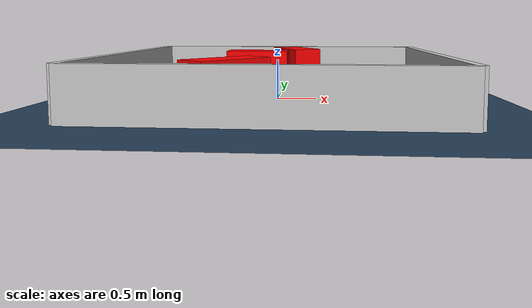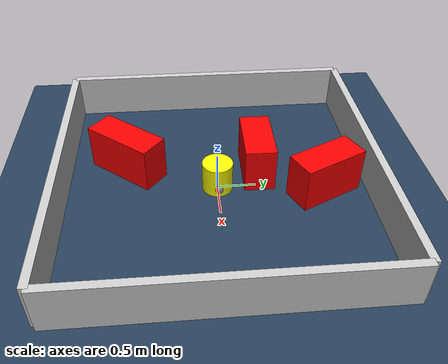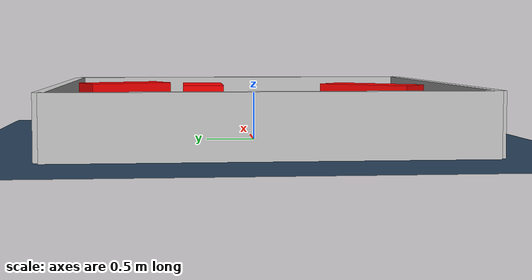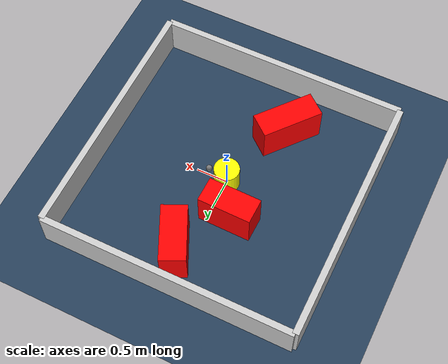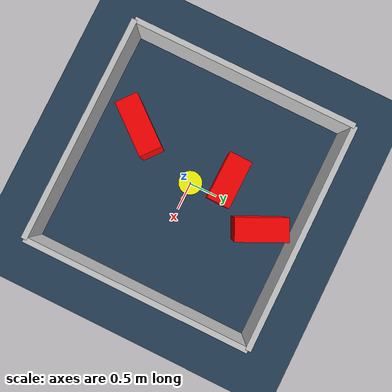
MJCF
<?xml version="1.0" ?>
<mujoco model="generated_environment">
  <option timestep="0.01" integrator="RK4" cone="elliptic"/>
  <default>
    <geom density="1"/>
  </default>
  <asset>
    <texture builtin="gradient" height="3072" rgb1="0.3 0.5 0.7" rgb2="0 0 0" type="skybox" width="512"/>
    <texture builtin="checker" height="300" mark="edge" markrgb="0.8 0.8 0.8" name="groundplane" rgb1="0.2 0.3 0.4" rgb2="0.1 0.2 0.3" type="2d" width="300"/>
    <material name="groundplane" reflectance="0.2" texrepeat="5 5" texture="groundplane" texuniform="true"/>
    <material name="robot" rgba="0.0 1.0 0.0 1"/>
  </asset>
  <worldbody>
    <light dir="0 0 -1" directional="true" pos="0 0 1.5"/>
    <geom condim="4" friction="1.0 0.005 0.001" material="groundplane" name="floor" size="0 0 0.05" type="plane"/>
    <body name="walls">
      <geom name="wall_1" condim="4" pos="-2.0 0.0 0.3" rgba="0.800000011920929 0.800000011920929 0.800000011920929 1.0" size="0.05 2.0 0.3" type="box"/>
      <geom name="wall_2" condim="4" pos="2.0 0.0 0.3" rgba="0.800000011920929 0.800000011920929 0.800000011920929 1.0" size="0.05 2.0 0.3" type="box"/>
      <geom name="wall_3" condim="4" pos="0.0 -2.0 0.3" rgba="0.800000011920929 0.800000011920929 0.800000011920929 1.0" size="2.0 0.05 0.3" type="box"/>
      <geom name="wall_4" condim="4" pos="0.0 2.0 0.3" rgba="0.800000011920929 0.800000011920929 0.800000011920929 1.0" size="2.0 0.05 0.3" type="box"/>
    </body>
    <body name="robot">
      <joint name="joint_x" type="slide" pos="0 0 0" axis="1 0 0"/>
      <joint name="joint_y" type="slide" pos="0 0 0" axis="0 1 0"/>
      <geom name="robot" type="sphere" pos="0.3 0.0 0.2" size="0.05" mass="5." friction="1.0 0.005 0.0001" condim="4" rgba="0.5 0.5 0.5 1.0"/>
      <site name="sensor_ball"/>
    </body>
    <body name="obstacle_movable_1">
      <geom name="obstacle_movable_1" condim="4" pos="0.0 0.0 0.2" euler="0 0 0.0" friction="1.0 0.005 0.001" rgba="1.0 1.0 0.0 1.0" size="0.2 0.2 0.0" type="cylinder" mass="0.1"/>
      <joint type="free"/>
    </body>
    <body name="obstacle_2_static">
      <geom name="obstacle_2_static" condim="4" pos="-0.46990523545765184 -1.1745062966516757 0.3" euler="0 0 230.51091292653186" friction="1.0 0.005 0.001" rgba="1 0 0 1" size="0.4904200077887076 0.2 0.3" type="box"/>
    </body>
    <body name="obstacle_3_static">
      <geom name="obstacle_3_static" condim="4" pos="-0.3128975709758217 0.5550863005537414 0.3" euler="0 0 359.12289662896825" friction="1.0 0.005 0.001" rgba="1 0 0 1" size="0.41927760249473023 0.2 0.3" type="box"/>
    </body>
    <body name="obstacle_4_static">
      <geom name="obstacle_4_static" condim="4" pos="0.18206748917554183 1.3710695306050027 0.3" euler="0 0 295.5282824777765" friction="1.0 0.005 0.001" rgba="1 0 0 1" size="0.4430158385094045 0.2 0.3" type="box"/>
    </body>
  </worldbody>
  <actuator>
    <motor name="actuator_x" joint="joint_x" gear="1" ctrlrange="-1 1"/>
    <motor name="actuator_y" joint="joint_y" gear="1" ctrlrange="-1 1"/>
  </actuator>
</mujoco>
